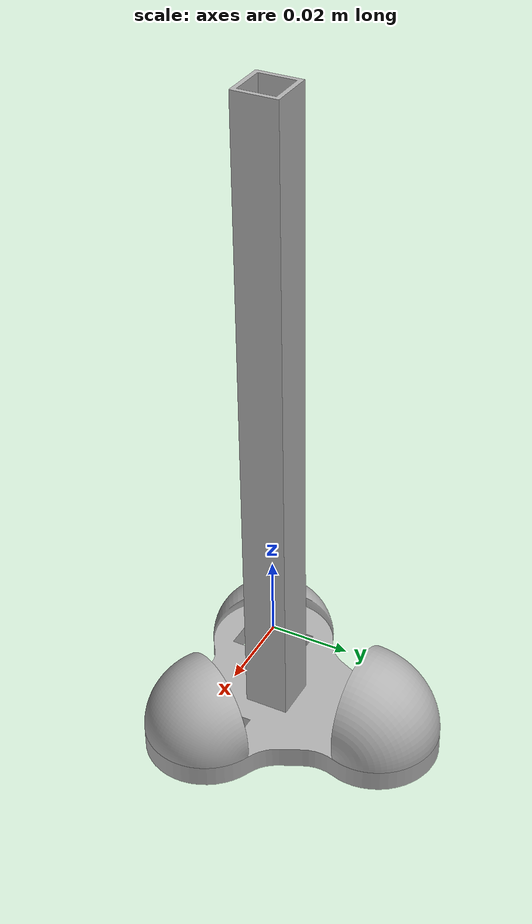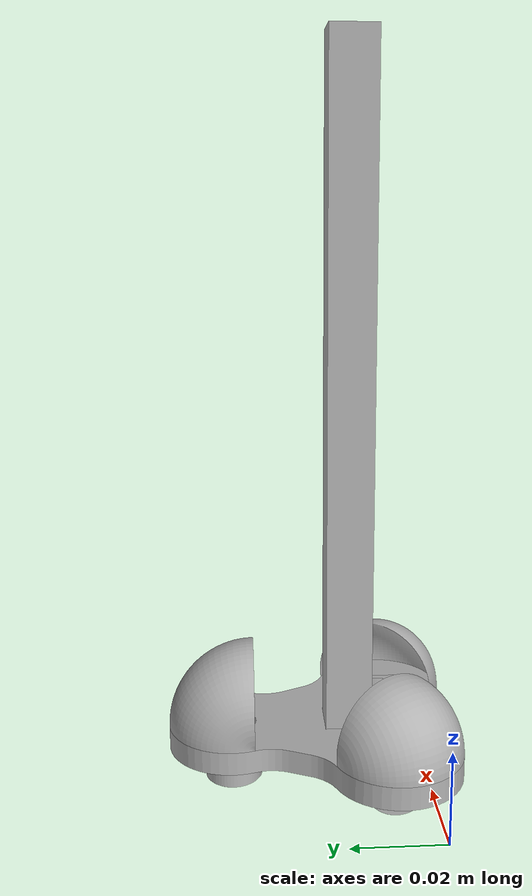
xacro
<?xml version="1.0" ?>
<robot name="WHEELBASE" xmlns:xacro="http://www.ros.org/wiki/xacro">

<xacro:include filename="$(find WHEELBASE_description)/urdf/materials.xacro" />
<xacro:include filename="$(find WHEELBASE_description)/urdf/WHEELBASE.trans" />
<xacro:include filename="$(find WHEELBASE_description)/urdf/WHEELBASE.gazebo" />
<link name="base_link">
  <inertial>
    <origin xyz="0.31284579770446164 0.21309636765692727 0.09311470488492443" rpy="0 0 0"/>
    <mass value="70.33156451953299"/>
    <inertia ixx="1.980497" iyy="1.335951" izz="3.287143" ixy="-0.0" iyz="-0.0" ixz="0.0"/>
  </inertial>
  <visual>
    <origin xyz="0 0 0" rpy="0 0 0"/>
    <geometry>
      <mesh filename="package://WHEELBASE_description/meshes/base_link.stl" scale="0.001 0.001 0.001"/>
    </geometry>
    <material name="silver"/>
  </visual>
  <collision>
    <origin xyz="0 0 0" rpy="0 0 0"/>
    <geometry>
      <mesh filename="package://WHEELBASE_description/meshes/base_link.stl" scale="0.001 0.001 0.001"/>
    </geometry>
  </collision>
</link>

<link name="Component10_1">
  <inertial>
    <origin xyz="-0.46873 -0.084002 -0.118115" rpy="0 0 0"/>
    <mass value="0.0"/>
    <inertia ixx="0.0" iyy="0.0" izz="0.0" ixy="0.0" iyz="0.0" ixz="0.0"/>
  </inertial>
  <visual>
    <origin xyz="-0.46873 -0.084002 -0.118115" rpy="0 0 0"/>
    <geometry>
      <mesh filename="package://WHEELBASE_description/meshes/Component10_1.stl" scale="0.001 0.001 0.001"/>
    </geometry>
    <material name="silver"/>
  </visual>
  <collision>
    <origin xyz="-0.46873 -0.084002 -0.118115" rpy="0 0 0"/>
    <geometry>
      <mesh filename="package://WHEELBASE_description/meshes/Component10_1.stl" scale="0.001 0.001 0.001"/>
    </geometry>
  </collision>
</link>

<link name="Component8_1">
  <inertial>
    <origin xyz="-0.156961 -0.084002 -0.118115" rpy="0 0 0"/>
    <mass value="0.0"/>
    <inertia ixx="0.0" iyy="0.0" izz="0.0" ixy="0.0" iyz="0.0" ixz="0.0"/>
  </inertial>
  <visual>
    <origin xyz="-0.156961 -0.084002 -0.118115" rpy="0 0 0"/>
    <geometry>
      <mesh filename="package://WHEELBASE_description/meshes/Component8_1.stl" scale="0.001 0.001 0.001"/>
    </geometry>
    <material name="silver"/>
  </visual>
  <collision>
    <origin xyz="-0.156961 -0.084002 -0.118115" rpy="0 0 0"/>
    <geometry>
      <mesh filename="package://WHEELBASE_description/meshes/Component8_1.stl" scale="0.001 0.001 0.001"/>
    </geometry>
  </collision>
</link>

<link name="Component9_1">
  <inertial>
    <origin xyz="-0.312846 -0.424002 -0.118115" rpy="0 0 0"/>
    <mass value="0.0"/>
    <inertia ixx="0.0" iyy="0.0" izz="0.0" ixy="0.0" iyz="0.0" ixz="0.0"/>
  </inertial>
  <visual>
    <origin xyz="-0.312846 -0.424002 -0.118115" rpy="0 0 0"/>
    <geometry>
      <mesh filename="package://WHEELBASE_description/meshes/Component9_1.stl" scale="0.001 0.001 0.001"/>
    </geometry>
    <material name="silver"/>
  </visual>
  <collision>
    <origin xyz="-0.312846 -0.424002 -0.118115" rpy="0 0 0"/>
    <geometry>
      <mesh filename="package://WHEELBASE_description/meshes/Component9_1.stl" scale="0.001 0.001 0.001"/>
    </geometry>
  </collision>
</link>

<link name="Component7_1">
  <inertial>
    <origin xyz="-0.312821202295538 -0.12450188357914416 0.6568857048849248" rpy="0 0 0"/>
    <mass value="41.91899999999998"/>
    <inertia ixx="7.915851" iyy="7.915851" izz="0.112077" ixy="0.0" iyz="-0.0" ixz="-0.0"/>
  </inertial>
  <visual>
    <origin xyz="-0.625667 -0.298004 -0.161229" rpy="0 0 0"/>
    <geometry>
      <mesh filename="package://WHEELBASE_description/meshes/Component7_1.stl" scale="0.001 0.001 0.001"/>
    </geometry>
    <material name="silver"/>
  </visual>
  <collision>
    <origin xyz="-0.625667 -0.298004 -0.161229" rpy="0 0 0"/>
    <geometry>
      <mesh filename="package://WHEELBASE_description/meshes/Component7_1.stl" scale="0.001 0.001 0.001"/>
    </geometry>
  </collision>
</link>

<link name="Component19_1">
  <inertial>
    <origin xyz="-1.2317951106510794e-05 1.1642085651075718e-07 -0.03876676158490564" rpy="0 0 0"/>
    <mass value="8.125143264664759"/>
    <inertia ixx="0.012769" iyy="0.013881" izz="0.016655" ixy="-0.0" iyz="-0.0" ixz="3e-06"/>
  </inertial>
  <visual>
    <origin xyz="-0.312846 -0.424002 -0.068115" rpy="0 0 0"/>
    <geometry>
      <mesh filename="package://WHEELBASE_description/meshes/Component19_1.stl" scale="0.001 0.001 0.001"/>
    </geometry>
    <material name="silver"/>
  </visual>
  <collision>
    <origin xyz="-0.312846 -0.424002 -0.068115" rpy="0 0 0"/>
    <geometry>
      <mesh filename="package://WHEELBASE_description/meshes/Component19_1.stl" scale="0.001 0.001 0.001"/>
    </geometry>
  </collision>
</link>

<link name="Component18_1">
  <inertial>
    <origin xyz="-0.0030207849347674842 1.1642096639508104e-07 -2.9511509425095284e-07" rpy="0 0 0"/>
    <mass value="2.8010697707417975"/>
    <inertia ixx="0.008982" iyy="0.004757" izz="0.004757" ixy="-0.0" iyz="0.0" ixz="-0.0"/>
  </inertial>
  <visual>
    <origin xyz="-0.47373 -0.084002 -0.055615" rpy="0 0 0"/>
    <geometry>
      <mesh filename="package://WHEELBASE_description/meshes/Component18_1.stl" scale="0.001 0.001 0.001"/>
    </geometry>
    <material name="silver"/>
  </visual>
  <collision>
    <origin xyz="-0.47373 -0.084002 -0.055615" rpy="0 0 0"/>
    <geometry>
      <mesh filename="package://WHEELBASE_description/meshes/Component18_1.stl" scale="0.001 0.001 0.001"/>
    </geometry>
  </collision>
</link>

<link name="Component17_1">
  <inertial>
    <origin xyz="0.0030209530248860583 1.164208511261755e-07 -2.95115075273078e-07" rpy="0 0 0"/>
    <mass value="2.8010697707418943"/>
    <inertia ixx="0.008982" iyy="0.004757" izz="0.004757" ixy="-0.0" iyz="0.0" ixz="0.0"/>
  </inertial>
  <visual>
    <origin xyz="-0.147846 -0.085002 -0.055615" rpy="0 0 0"/>
    <geometry>
      <mesh filename="package://WHEELBASE_description/meshes/Component17_1.stl" scale="0.001 0.001 0.001"/>
    </geometry>
    <material name="silver"/>
  </visual>
  <collision>
    <origin xyz="-0.147846 -0.085002 -0.055615" rpy="0 0 0"/>
    <geometry>
      <mesh filename="package://WHEELBASE_description/meshes/Component17_1.stl" scale="0.001 0.001 0.001"/>
    </geometry>
  </collision>
</link>

<link name="Motor_v1_1">
  <inertial>
    <origin xyz="-0.35481269487349165 -0.17400188357914348 -0.08061429511507548" rpy="0 0 0"/>
    <mass value="0.391530547318601"/>
    <inertia ixx="3e-05" iyy="0.000703" izz="0.000703" ixy="-0.0" iyz="0.0" ixz="-0.0"/>
  </inertial>
  <visual>
    <origin xyz="-0.731552 -0.258004 -0.136229" rpy="0 0 0"/>
    <geometry>
      <mesh filename="package://WHEELBASE_description/meshes/Motor_v1_1.stl" scale="0.001 0.001 0.001"/>
    </geometry>
    <material name="silver"/>
  </visual>
  <collision>
    <origin xyz="-0.731552 -0.258004 -0.136229" rpy="0 0 0"/>
    <geometry>
      <mesh filename="package://WHEELBASE_description/meshes/Motor_v1_1.stl" scale="0.001 0.001 0.001"/>
    </geometry>
  </collision>
</link>

<link name="Motor_v1__1__1">
  <inertial>
    <origin xyz="-0.3308301370363861 -0.21300188357914393 -0.0806142951150754" rpy="0 0 0"/>
    <mass value="0.391530547318601"/>
    <inertia ixx="3e-05" iyy="0.000703" izz="0.000703" ixy="0.0" iyz="-0.0" ixz="0.0"/>
  </inertial>
  <visual>
    <origin xyz="-0.575667 -0.298004 -0.136229" rpy="0 0 0"/>
    <geometry>
      <mesh filename="package://WHEELBASE_description/meshes/Motor_v1__1__1.stl" scale="0.001 0.001 0.001"/>
    </geometry>
    <material name="silver"/>
  </visual>
  <collision>
    <origin xyz="-0.575667 -0.298004 -0.136229" rpy="0 0 0"/>
    <geometry>
      <mesh filename="package://WHEELBASE_description/meshes/Motor_v1__1__1.stl" scale="0.001 0.001 0.001"/>
    </geometry>
  </collision>
</link>

<joint name="Rigid 2" type="fixed">
  <origin xyz="0.46873 0.084002 0.118115" rpy="0 0 0"/>
  <parent link="base_link"/>
  <child link="Component10_1"/>
</joint>

<joint name="Rigid 3" type="fixed">
  <origin xyz="0.156961 0.084002 0.118115" rpy="0 0 0"/>
  <parent link="base_link"/>
  <child link="Component8_1"/>
</joint>

<joint name="Rigid 4" type="fixed">
  <origin xyz="0.312846 0.424002 0.118115" rpy="0 0 0"/>
  <parent link="base_link"/>
  <child link="Component9_1"/>
</joint>

<joint name="Rigid 5" type="fixed">
  <origin xyz="0.625667 0.298004 0.161229" rpy="0 0 0"/>
  <parent link="base_link"/>
  <child link="Component7_1"/>
</joint>

<joint name="Rigid 7" type="fixed">
  <origin xyz="0.312846 0.424002 0.068115" rpy="0 0 0"/>
  <parent link="base_link"/>
  <child link="Component19_1"/>
</joint>

<joint name="Revolute 8" type="continuous">
  <origin xyz="-0.257822 -0.174002 -0.080614" rpy="0 0 0"/>
  <parent link="Motor_v1_1"/>
  <child link="Component18_1"/>
  <axis xyz="1.0 -0.0 -0.0"/>
</joint>

<joint name="Revolute 9" type="continuous">
  <origin xyz="-0.427821 -0.213002 -0.080614" rpy="0 0 0"/>
  <parent link="Motor_v1__1__1"/>
  <child link="Component17_1"/>
  <axis xyz="-1.0 -0.0 0.0"/>
</joint>

<joint name="Rigid 10" type="fixed">
  <origin xyz="0.731552 0.258004 0.136229" rpy="0 0 0"/>
  <parent link="base_link"/>
  <child link="Motor_v1_1"/>
</joint>

<joint name="Rigid 11" type="fixed">
  <origin xyz="0.575667 0.298004 0.136229" rpy="0 0 0"/>
  <parent link="base_link"/>
  <child link="Motor_v1__1__1"/>
</joint>

</robot>

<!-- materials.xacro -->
<robot name="WHEELBASE" xmlns:xacro="http://www.ros.org/wiki/xacro" >

<material name="silver">
  <color rgba="0.700 0.700 0.700 1.000"/>
</material>

</robot>

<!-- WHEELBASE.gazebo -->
<robot name="WHEELBASE" xmlns:xacro="http://www.ros.org/wiki/xacro" >

<xacro:property name="body_color" value="Gazebo/Silver" />

<gazebo>
  <plugin name="control" filename="libgazebo_ros_control.so"/>
</gazebo>
<gazebo reference="base_link">
  <material>${body_color}</material>
  <mu1>0.2</mu1>
  <mu2>0.2</mu2>
  <selfCollide>true</selfCollide>
  <gravity>true</gravity>
</gazebo>

<gazebo reference="Component10_1">
  <material>${body_color}</material>
  <mu1>0.2</mu1>
  <mu2>0.2</mu2>
  <selfCollide>true</selfCollide>
</gazebo>

<gazebo reference="Component8_1">
  <material>${body_color}</material>
  <mu1>0.2</mu1>
  <mu2>0.2</mu2>
  <selfCollide>true</selfCollide>
</gazebo>

<gazebo reference="Component9_1">
  <material>${body_color}</material>
  <mu1>0.2</mu1>
  <mu2>0.2</mu2>
  <selfCollide>true</selfCollide>
</gazebo>

<gazebo reference="Component7_1">
  <material>${body_color}</material>
  <mu1>0.2</mu1>
  <mu2>0.2</mu2>
  <selfCollide>true</selfCollide>
</gazebo>

<gazebo reference="Component19_1">
  <material>${body_color}</material>
  <mu1>0.2</mu1>
  <mu2>0.2</mu2>
  <selfCollide>true</selfCollide>
</gazebo>

<gazebo reference="Component18_1">
  <material>${body_color}</material>
  <mu1>0.2</mu1>
  <mu2>0.2</mu2>
  <selfCollide>true</selfCollide>
</gazebo>

<gazebo reference="Component17_1">
  <material>${body_color}</material>
  <mu1>0.2</mu1>
  <mu2>0.2</mu2>
  <selfCollide>true</selfCollide>
</gazebo>

<gazebo reference="Motor_v1_1">
  <material>${body_color}</material>
  <mu1>0.2</mu1>
  <mu2>0.2</mu2>
  <selfCollide>true</selfCollide>
</gazebo>

<gazebo reference="Motor_v1__1__1">
  <material>${body_color}</material>
  <mu1>0.2</mu1>
  <mu2>0.2</mu2>
  <selfCollide>true</selfCollide>
</gazebo>

</robot>
